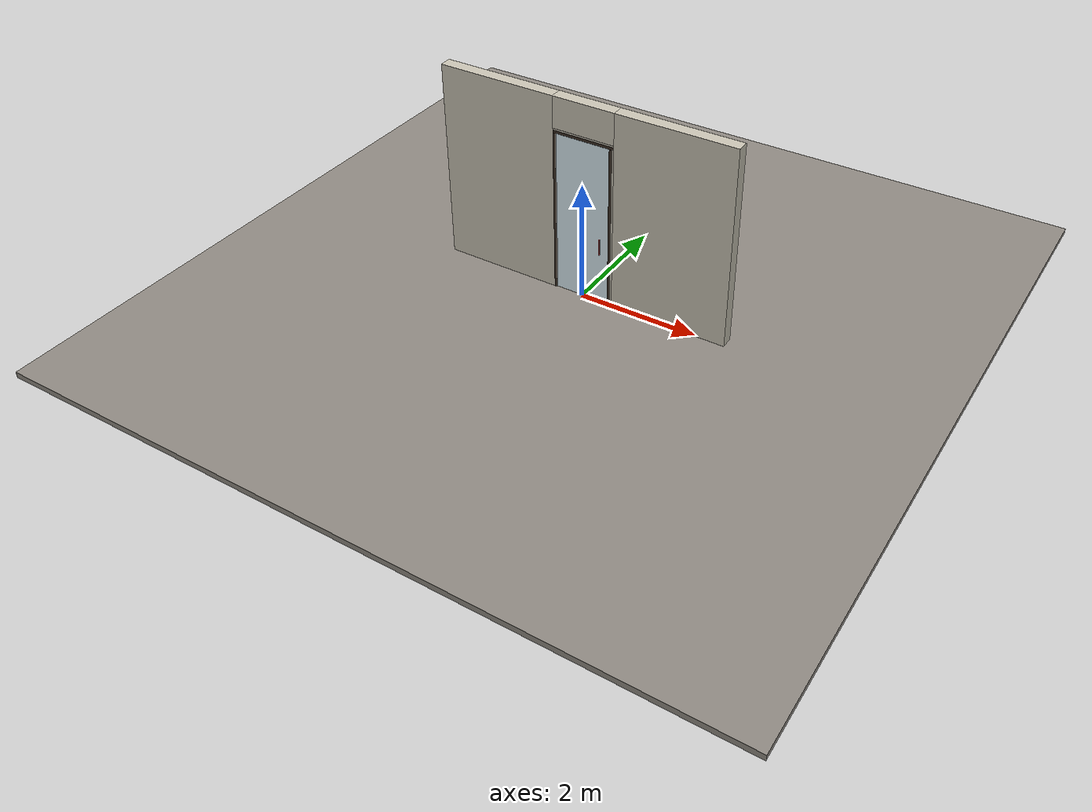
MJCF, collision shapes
<?xml version="1.0" ?>
<mujoco model="db0411_swing_single_minimal">
  <compiler angle="radian" meshdir="../../hardware" texturedir="../../textures" autolimits="true" inertiafromgeom="false"/>
  <option timestep="0.002" integrator="implicitfast" cone="elliptic" impratio="10" noslip_iterations="3">
    <flag multiccd="enable"/>
  </option>
  <size memory="16M"/>
  <default>
    <geom condim="4" solref="0.005 1" solimp="0.95 0.99 0.001"/>
    <joint solreflimit="0.005 1" solimplimit="0.95 0.99 0.001"/>
    <tendon solreflimit="0.005 1"/>
    <equality solref="0.002 1"/>
  </default>
  <visual>
    <headlight ambient="0.4 0.4 0.4" diffuse="0.7 0.7 0.7" specular="0.2 0.2 0.2"/>
    <quality shadowsize="4096"/>
    <map znear="0.01" zfar="60"/>
  </visual>
  <asset>
    <mesh name="pull_f8d79d6331" file="pull_f8d79d6331.obj"/>
    <material name="mat_floor" rgba="0.55 0.53 0.5 1" specular="0.2" shininess="0.15" reflectance="0"/>
    <material name="mat_wall" rgba="0.78 0.76 0.7 1" specular="0.2" shininess="0.1" reflectance="0"/>
    <material name="mat_leaf" rgba="0.85 0.92 0.95 0.25" specular="0.2" shininess="0.95" reflectance="0.1"/>
    <material name="mat_glass_leaf" rgba="0.85 0.92 0.95 0.25" specular="0.2" shininess="0.95" reflectance="0.1"/>
    <material name="mat_patch" rgba="0.75 0.76 0.77 1" specular="0.8" shininess="0.65" reflectance="0.4"/>
    <material name="mat_hinge" rgba="0.65 0.66 0.68 1" specular="0.74" shininess="0.5" reflectance="0.36"/>
    <material name="mat_op_stainless" rgba="0.75 0.76 0.77 1" specular="0.8" shininess="0.65" reflectance="0.4"/>
    <material name="mat_frame" rgba="0.22 0.17 0.13 1" specular="0.8" shininess="0.6" reflectance="0.4"/>
    <material name="mat_closer" rgba="0.22 0.17 0.13 1" specular="0.8" shininess="0.6" reflectance="0.4"/>
    <material name="mat_exit_sign" rgba="0.85 0.1 0.1 1" specular="0.2" shininess="0.6" reflectance="0"/>
    <material name="mat_sign_bracket" rgba="0.8 0.81 0.83 1" specular="0.8" shininess="0.6" reflectance="0.4"/>
    <material name="mat_sign" rgba="0.75 0.76 0.77 1" specular="0.8" shininess="0.65" reflectance="0.4"/>
    <material name="mat_stop" rgba="0.9 0.9 0.92 1" specular="0.8" shininess="0.9" reflectance="0.4"/>
    <texture name="skybox" type="skybox" builtin="gradient" rgb1="0.6 0.7 0.85" rgb2="0.9 0.92 0.95" width="256" height="256"/>
  </asset>
  <worldbody>
    <light name="sun" pos="1.5 -2.5 4" dir="-0.3 0.5 -0.8" directional="true" diffuse="0.8 0.8 0.8" specular="0.3 0.3 0.3" castshadow="true"/>
    <light name="fill" pos="-1.5 2.5 3" dir="0.3 -0.5 -0.7" directional="true" diffuse="0.35 0.35 0.4" castshadow="false"/>
    <camera name="robot_view" pos="0 -3.12175 2.27645" xyaxes="1 0 0 0 0.26963 0.962964" fovy="52"/>
    <camera name="far_view" pos="0 3.29575 2.27645" xyaxes="-1 0 0 0 -0.26963 0.962964" fovy="52"/>
    <camera name="iso" pos="2.43865 -2.60835 2.78985" xyaxes="0.741536 0.670913 0 -0.242917 0.268487 0.932151" fovy="46"/>
    <camera name="detail_handle" pos="0.5335 -0.881 1.347" xyaxes="0.97561 0.219512 0 -0.070934 0.315262 0.94635" fovy="38"/>
    <geom name="floor" type="box" size="6 6 0.05" pos="0 0 -0.05" material="mat_floor" group="0" contype="1" conaffinity="1" friction="0.8 0.005 0.0001" density="2400"/>
    <geom name="wall_left" type="box" size="0.99675 0.1 1.678" pos="-1.50325 0.087 1.678" material="mat_wall" group="0" contype="1" conaffinity="1" friction="0.6 0.005 0.0001" density="800"/>
    <geom name="wall_right" type="box" size="0.98175 0.1 1.678" pos="1.51825 0.087 1.678" material="mat_wall" group="0" contype="1" conaffinity="1" friction="0.6 0.005 0.0001" density="800"/>
    <geom name="wall_header" type="box" size="0.5215 0.1 0.2625" pos="0.015 0.087 3.0935" material="mat_wall" group="0" contype="1" conaffinity="1" friction="0.6 0.005 0.0001" density="800"/>
    <geom name="jamb_hinge" type="box" size="0.0225 0.1 1.378" pos="-0.484 0.087 1.378" material="mat_frame" group="0" contype="1" conaffinity="1" friction="0.6 0.005 0.0001" density="300"/>
    <geom name="jamb_strike" type="box" size="0.0225 0.1 1.378" pos="0.484 0.087 1.378" material="mat_frame" group="0" contype="1" conaffinity="1" friction="0.6 0.005 0.0001" density="300"/>
    <geom name="stud_strike" type="box" size="0.015 0.1 1.378" pos="0.5215 0.087 1.378" material="mat_wall" group="0" contype="1" conaffinity="1" friction="0.6 0.005 0.0001" density="500"/>
    <geom name="jamb_head" type="box" size="0.5215 0.1 0.0225" pos="0.015 0.087 2.7785" material="mat_frame" group="0" contype="1" conaffinity="1" friction="0.6 0.005 0.0001" density="300"/>
    <geom name="head_stud" type="box" size="0.5215 0.1 0.015" pos="0.015 0.087 2.816" material="mat_wall" group="0" contype="1" conaffinity="1" friction="0.6 0.005 0.0001" density="500"/>
    <site name="approach_point" pos="0 -1.5 0" quat="1 0 0 0" size="0.05" rgba="0.2 0.9 0.2 0.5" group="4"/>
    <site name="goal_point" pos="0 1.5 0" quat="1 0 0 0" size="0.05" rgba="0.2 0.9 0.2 0.5" group="4"/>
    <site name="door_plane_center" pos="0 0 1.378" quat="1 0 0 0" size="0.02" rgba="0.2 0.9 0.2 0.5" group="4"/>
    <body name="leaf" pos="-0.4615 0 0">
      <inertial pos="0.598306 0 1.259993" mass="87.46306" quat="0.518678 -0.518678 0.480596 0.480596" diaginertia="6.328708404 36.424670832 42.37601671"/>
      <joint name="leaf_hinge" type="hinge" axis="0 0 -1" pos="0.003 -0.013 0" limited="true" range="0 1.658063" solreflimit="0.02 1" damping="15.345723" frictionloss="2.083662" stiffness="18.060903" springref="-2.335431" armature="0.02"/>
      <geom name="leaf_glass" type="box" size="0.457 0.006 1.3715" pos="0.463 0 1.3805" material="mat_glass_leaf" group="0" contype="1" conaffinity="1" friction="0.4 0.005 0.0001" density="1"/>
      <geom name="leaf_pull_n" type="mesh" mesh="pull_f8d79d6331" pos="0.815 -0.006 1.067" quat="0.707107 0.707107 0 0" material="mat_op_stainless" group="1" contype="0" conaffinity="0" density="3000"/>
      <geom name="leaf_pull_col_n" type="capsule" size="0.0125 0.13" pos="0.815 -0.081 1.067" material="mat_op_stainless" group="3" contype="1" conaffinity="1" rgba="0.8 0.3 0.3 0.25" friction="0.7 0.01 0.0001" density="3000"/>
      <geom name="leaf_pull_p" type="mesh" mesh="pull_f8d79d6331" pos="0.815 0.006 1.067" quat="-0.707107 0.707107 0 0" material="mat_op_stainless" group="1" contype="0" conaffinity="0" density="3000"/>
      <geom name="leaf_pull_col_p" type="capsule" size="0.0125 0.13" pos="0.815 0.081 1.067" material="mat_op_stainless" group="3" contype="1" conaffinity="1" rgba="0.8 0.3 0.3 0.25" friction="0.7 0.01 0.0001" density="3000"/>
      <site name="leaf_pull_grip_n" pos="0.815 -0.081 1.067" quat="1 0 0 0" size="0.012" rgba="0.2 0.9 0.2 0.5" group="4"/>
      <site name="leaf_pull_grip_p" pos="0.815 0.081 1.067" quat="1 0 0 0" size="0.012" rgba="0.2 0.9 0.2 0.5" group="4"/>
      <site name="leaf_edge_mid" pos="0.92 0 1.3715" quat="1 0 0 0" size="0.02" rgba="0.2 0.9 0.2 0.5" group="4"/>
    </body>
  </worldbody>
  <sensor>
    <jointpos name="leaf_hinge_pos" joint="leaf_hinge"/>
    <jointvel name="leaf_hinge_vel" joint="leaf_hinge"/>
  </sensor>
</mujoco>
